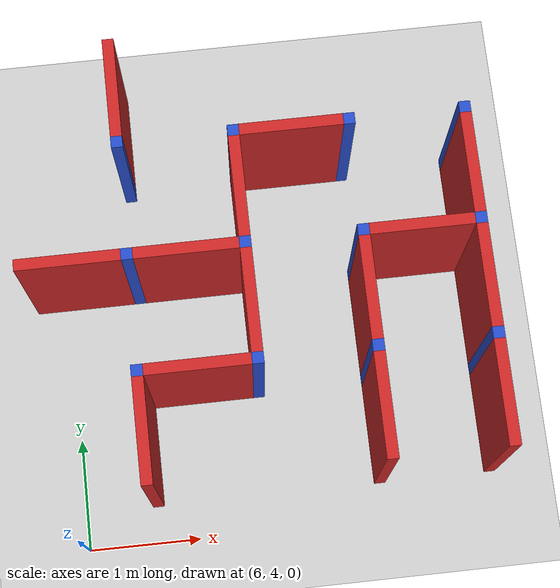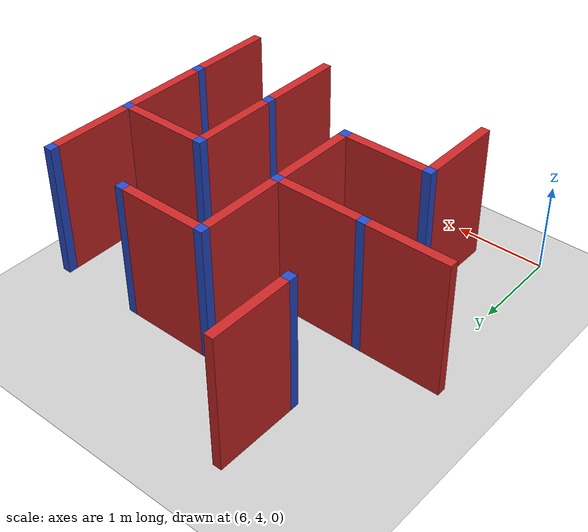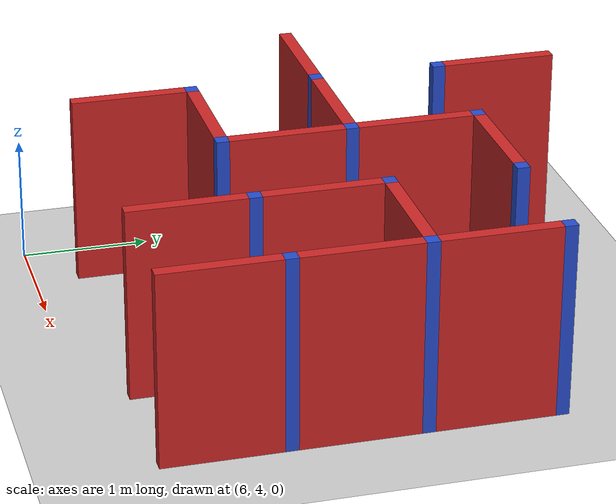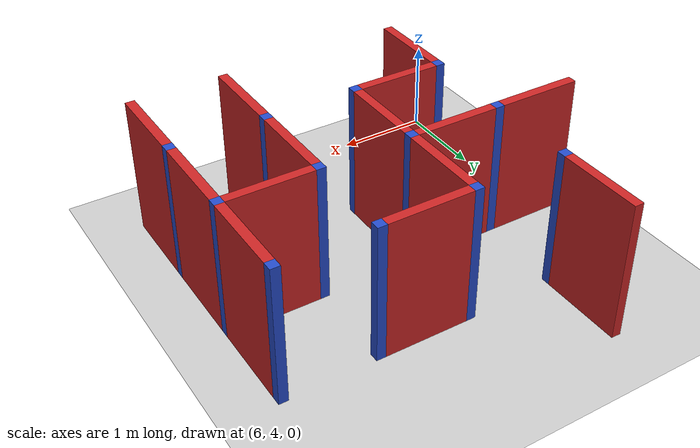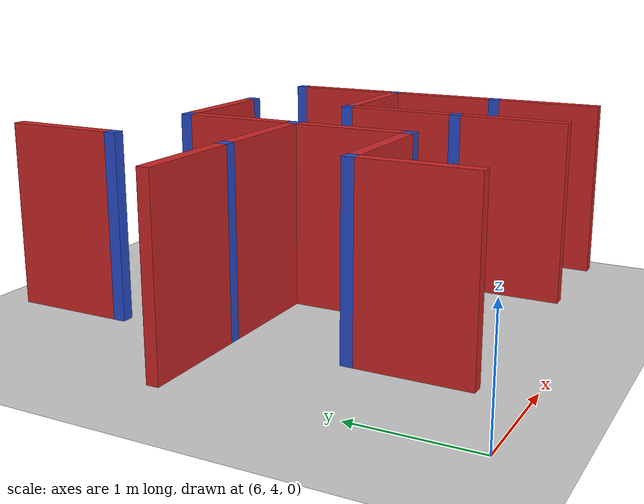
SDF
<sdf version="1.7">
 <world name="default">
  <model name="ground_plane">
   <static>1</static>
   <link name="link">
    <collision name="collision">
     <geometry><plane><normal>0 0 1</normal><size>100 100</size></plane></geometry>
     <surface><friction><ode><mu>100</mu><mu2>50</mu2></ode></friction></surface>
    </collision>
    <visual name="visual">
     <cast_shadows>0</cast_shadows>
     <geometry><plane><normal>0 0 1</normal><size>100 100</size></plane></geometry>
     <material>
      <script><uri>file://media/materials/scripts/gazebo.material</uri><name>Gazebo/Grey</name></script>
     </material>
    </visual>
   </link>
  </model>
  <model name="maze_demo">
   <link name="Joint_12_-10">
    <pose>12 -10 0 0 -0 0</pose>
    <visual name="Wall_2_Visual">
     <pose>0 0 0.75 0 -0 0</pose>
     <geometry><box><size>0.1 0.1 1.5</size></box></geometry>
     <material>
      <script><uri>file://media/materials/scripts/gazebo.material</uri><name>Gazebo/Blue</name></script>
      <ambient>0.996078 0.47451 0.0196078 1</ambient>
      <shader type="pixel"/>
     </material>
     <meta><layer>0</layer></meta>
    </visual>
    <collision name="Wall_2_Collision">
     <pose>0 0 0.75 0 -0 0</pose>
     <geometry><box><size>0.1 0.1 1.5</size></box></geometry>
     <surface>
      <friction>
       <ode><mu>1</mu><mu2>1</mu2><fdir1>0 0 0</fdir1><slip1>0</slip1><slip2>0</slip2></ode>
       <torsional>
        <coefficient>1</coefficient>
        <patch_radius>0</patch_radius>
        <surface_radius>0</surface_radius>
        <use_patch_radius>1</use_patch_radius>
        <ode><slip>0</slip></ode>
       </torsional>
      </friction>
      <bounce><restitution_coefficient>0</restitution_coefficient><threshold>1e+06</threshold></bounce>
      <contact>
       <collide_without_contact>0</collide_without_contact>
       <collide_without_contact_bitmask>1</collide_without_contact_bitmask>
       <collide_bitmask>1</collide_bitmask>
       <ode>
        <soft_cfm>0</soft_cfm>
        <soft_erp>0.2</soft_erp>
        <kp>1e+13</kp>
        <kd>1</kd>
        <max_vel>0.01</max_vel>
        <min_depth>0</min_depth>
       </ode>
       <bullet>
        <split_impulse>1</split_impulse>
        <split_impulse_penetration_threshold>-0.01</split_impulse_penetration_threshold>
        <soft_cfm>0</soft_cfm>
        <soft_erp>0.2</soft_erp>
        <kp>1e+13</kp>
        <kd>1</kd>
       </bullet>
      </contact>
     </surface>
    </collision>
   </link>
   <link name="Joint_12_-8">
    <pose>12 -8 0 0 -0 0</pose>
    <visual name="Wall_2_Visual">
     <pose>0 0 0.75 0 -0 0</pose>
     <geometry><box><size>0.1 0.1 1.5</size></box></geometry>
     <material>
      <script><uri>file://media/materials/scripts/gazebo.material</uri><name>Gazebo/Blue</name></script>
      <ambient>0.996078 0.47451 0.0196078 1</ambient>
      <shader type="pixel"/>
     </material>
     <meta><layer>0</layer></meta>
    </visual>
    <collision name="Wall_2_Collision">
     <pose>0 0 0.75 0 -0 0</pose>
     <geometry><box><size>0.1 0.1 1.5</size></box></geometry>
     <surface>
      <friction>
       <ode><mu>1</mu><mu2>1</mu2><fdir1>0 0 0</fdir1><slip1>0</slip1><slip2>0</slip2></ode>
       <torsional>
        <coefficient>1</coefficient>
        <patch_radius>0</patch_radius>
        <surface_radius>0</surface_radius>
        <use_patch_radius>1</use_patch_radius>
        <ode><slip>0</slip></ode>
       </torsional>
      </friction>
      <bounce><restitution_coefficient>0</restitution_coefficient><threshold>1e+06</threshold></bounce>
      <contact>
       <collide_without_contact>0</collide_without_contact>
       <collide_without_contact_bitmask>1</collide_without_contact_bitmask>
       <collide_bitmask>1</collide_bitmask>
       <ode>
        <soft_cfm>0</soft_cfm>
        <soft_erp>0.2</soft_erp>
        <kp>1e+13</kp>
        <kd>1</kd>
        <max_vel>0.01</max_vel>
        <min_depth>0</min_depth>
       </ode>
       <bullet>
        <split_impulse>1</split_impulse>
        <split_impulse_penetration_threshold>-0.01</split_impulse_penetration_threshold>
        <soft_cfm>0</soft_cfm>
        <soft_erp>0.2</soft_erp>
        <kp>1e+13</kp>
        <kd>1</kd>
       </bullet>
      </contact>
     </surface>
    </collision>
   </link>
   <link name="Joint_12_-9">
    <pose>12 -9 0 0 -0 0</pose>
    <visual name="Wall_2_Visual">
     <pose>0 0 0.75 0 -0 0</pose>
     <geometry><box><size>0.1 0.1 1.5</size></box></geometry>
     <material>
      <script><uri>file://media/materials/scripts/gazebo.material</uri><name>Gazebo/Blue</name></script>
      <ambient>0.996078 0.47451 0.0196078 1</ambient>
      <shader type="pixel"/>
     </material>
     <meta><layer>0</layer></meta>
    </visual>
    <collision name="Wall_2_Collision">
     <pose>0 0 0.75 0 -0 0</pose>
     <geometry><box><size>0.1 0.1 1.5</size></box></geometry>
     <surface>
      <friction>
       <ode><mu>1</mu><mu2>1</mu2><fdir1>0 0 0</fdir1><slip1>0</slip1><slip2>0</slip2></ode>
       <torsional>
        <coefficient>1</coefficient>
        <patch_radius>0</patch_radius>
        <surface_radius>0</surface_radius>
        <use_patch_radius>1</use_patch_radius>
        <ode><slip>0</slip></ode>
       </torsional>
      </friction>
      <bounce><restitution_coefficient>0</restitution_coefficient><threshold>1e+06</threshold></bounce>
      <contact>
       <collide_without_contact>0</collide_without_contact>
       <collide_without_contact_bitmask>1</collide_without_contact_bitmask>
       <collide_bitmask>1</collide_bitmask>
       <ode>
        <soft_cfm>0</soft_cfm>
        <soft_erp>0.2</soft_erp>
        <kp>1e+13</kp>
        <kd>1</kd>
        <max_vel>0.01</max_vel>
        <min_depth>0</min_depth>
       </ode>
       <bullet>
        <split_impulse>1</split_impulse>
        <split_impulse_penetration_threshold>-0.01</split_impulse_penetration_threshold>
        <soft_cfm>0</soft_cfm>
        <soft_erp>0.2</soft_erp>
        <kp>1e+13</kp>
        <kd>1</kd>
       </bullet>
      </contact>
     </surface>
    </collision>
   </link>
   <link name="Joint_13_-10">
    <pose>13 -10 0 0 -0 0</pose>
    <visual name="Wall_2_Visual">
     <pose>0 0 0.75 0 -0 0</pose>
     <geometry><box><size>0.1 0.1 1.5</size></box></geometry>
     <material>
      <script><uri>file://media/materials/scripts/gazebo.material</uri><name>Gazebo/Blue</name></script>
      <ambient>0.996078 0.47451 0.0196078 1</ambient>
      <shader type="pixel"/>
     </material>
     <meta><layer>0</layer></meta>
    </visual>
    <collision name="Wall_2_Collision">
     <pose>0 0 0.75 0 -0 0</pose>
     <geometry><box><size>0.1 0.1 1.5</size></box></geometry>
     <surface>
      <friction>
       <ode><mu>1</mu><mu2>1</mu2><fdir1>0 0 0</fdir1><slip1>0</slip1><slip2>0</slip2></ode>
       <torsional>
        <coefficient>1</coefficient>
        <patch_radius>0</patch_radius>
        <surface_radius>0</surface_radius>
        <use_patch_radius>1</use_patch_radius>
        <ode><slip>0</slip></ode>
       </torsional>
      </friction>
      <bounce><restitution_coefficient>0</restitution_coefficient><threshold>1e+06</threshold></bounce>
      <contact>
       <collide_without_contact>0</collide_without_contact>
       <collide_without_contact_bitmask>1</collide_without_contact_bitmask>
       <collide_bitmask>1</collide_bitmask>
       <ode>
        <soft_cfm>0</soft_cfm>
        <soft_erp>0.2</soft_erp>
        <kp>1e+13</kp>
        <kd>1</kd>
        <max_vel>0.01</max_vel>
        <min_depth>0</min_depth>
       </ode>
       <bullet>
        <split_impulse>1</split_impulse>
        <split_impulse_penetration_threshold>-0.01</split_impulse_penetration_threshold>
        <soft_cfm>0</soft_cfm>
        <soft_erp>0.2</soft_erp>
        <kp>1e+13</kp>
        <kd>1</kd>
       </bullet>
      </contact>
     </surface>
    </collision>
   </link>
   <link name="Joint_13_-8">
    <pose>13 -8 0 0 -0 0</pose>
    <visual name="Wall_2_Visual">
     <pose>0 0 0.75 0 -0 0</pose>
     <geometry><box><size>0.1 0.1 1.5</size></box></geometry>
     <material>
      <script><uri>file://media/materials/scripts/gazebo.material</uri><name>Gazebo/Blue</name></script>
      <ambient>0.996078 0.47451 0.0196078 1</ambient>
      <shader type="pixel"/>
     </material>
     <meta><layer>0</layer></meta>
    </visual>
    <collision name="Wall_2_Collision">
     <pose>0 0 0.75 0 -0 0</pose>
     <geometry><box><size>0.1 0.1 1.5</size></box></geometry>
     <surface>
      <friction>
       <ode><mu>1</mu><mu2>1</mu2><fdir1>0 0 0</fdir1><slip1>0</slip1><slip2>0</slip2></ode>
       <torsional>
        <coefficient>1</coefficient>
        <patch_radius>0</patch_radius>
        <surface_radius>0</surface_radius>
        <use_patch_radius>1</use_patch_radius>
        <ode><slip>0</slip></ode>
       </torsional>
      </friction>
      <bounce><restitution_coefficient>0</restitution_coefficient><threshold>1e+06</threshold></bounce>
      <contact>
       <collide_without_contact>0</collide_without_contact>
       <collide_without_contact_bitmask>1</collide_without_contact_bitmask>
       <collide_bitmask>1</collide_bitmask>
       <ode>
        <soft_cfm>0</soft_cfm>
        <soft_erp>0.2</soft_erp>
        <kp>1e+13</kp>
        <kd>1</kd>
        <max_vel>0.01</max_vel>
        <min_depth>0</min_depth>
       </ode>
       <bullet>
        <split_impulse>1</split_impulse>
        <split_impulse_penetration_threshold>-0.01</split_impulse_penetration_threshold>
        <soft_cfm>0</soft_cfm>
        <soft_erp>0.2</soft_erp>
        <kp>1e+13</kp>
        <kd>1</kd>
       </bullet>
      </contact>
     </surface>
    </collision>
   </link>
   <link name="Joint_13_-9">
    <pose>13 -9 0 0 -0 0</pose>
    <visual name="Wall_2_Visual">
     <pose>0 0 0.75 0 -0 0</pose>
     <geometry><box><size>0.1 0.1 1.5</size></box></geometry>
     <material>
      <script><uri>file://media/materials/scripts/gazebo.material</uri><name>Gazebo/Blue</name></script>
      <ambient>0.996078 0.47451 0.0196078 1</ambient>
      <shader type="pixel"/>
     </material>
     <meta><layer>0</layer></meta>
    </visual>
    <collision name="Wall_2_Collision">
     <pose>0 0 0.75 0 -0 0</pose>
     <geometry><box><size>0.1 0.1 1.5</size></box></geometry>
     <surface>
      <friction>
       <ode><mu>1</mu><mu2>1</mu2><fdir1>0 0 0</fdir1><slip1>0</slip1><slip2>0</slip2></ode>
       <torsional>
        <coefficient>1</coefficient>
        <patch_radius>0</patch_radius>
        <surface_radius>0</surface_radius>
        <use_patch_radius>1</use_patch_radius>
        <ode><slip>0</slip></ode>
       </torsional>
      </friction>
      <bounce><restitution_coefficient>0</restitution_coefficient><threshold>1e+06</threshold></bounce>
      <contact>
       <collide_without_contact>0</collide_without_contact>
       <collide_without_contact_bitmask>1</collide_without_contact_bitmask>
       <collide_bitmask>1</collide_bitmask>
       <ode>
        <soft_cfm>0</soft_cfm>
        <soft_erp>0.2</soft_erp>
        <kp>1e+13</kp>
        <kd>1</kd>
        <max_vel>0.01</max_vel>
        <min_depth>0</min_depth>
       </ode>
       <bullet>
        <split_impulse>1</split_impulse>
        <split_impulse_penetration_threshold>-0.01</split_impulse_penetration_threshold>
        <soft_cfm>0</soft_cfm>
        <soft_erp>0.2</soft_erp>
        <kp>1e+13</kp>
        <kd>1</kd>
       </bullet>
      </contact>
     </surface>
    </collision>
   </link>
   <link name="Joint_14_-10">
    <pose>14 -10 0 0 -0 0</pose>
    <visual name="Wall_2_Visual">
     <pose>0 0 0.75 0 -0 0</pose>
     <geometry><box><size>0.1 0.1 1.5</size></box></geometry>
     <material>
      <script><uri>file://media/materials/scripts/gazebo.material</uri><name>Gazebo/Blue</name></script>
      <ambient>0.996078 0.47451 0.0196078 1</ambient>
      <shader type="pixel"/>
     </material>
     <meta><layer>0</layer></meta>
    </visual>
    <collision name="Wall_2_Collision">
     <pose>0 0 0.75 0 -0 0</pose>
     <geometry><box><size>0.1 0.1 1.5</size></box></geometry>
     <surface>
      <friction>
       <ode><mu>1</mu><mu2>1</mu2><fdir1>0 0 0</fdir1><slip1>0</slip1><slip2>0</slip2></ode>
       <torsional>
        <coefficient>1</coefficient>
        <patch_radius>0</patch_radius>
        <surface_radius>0</surface_radius>
        <use_patch_radius>1</use_patch_radius>
        <ode><slip>0</slip></ode>
       </torsional>
      </friction>
      <bounce><restitution_coefficient>0</restitution_coefficient><threshold>1e+06</threshold></bounce>
      <contact>
       <collide_without_contact>0</collide_without_contact>
       <collide_without_contact_bitmask>1</collide_without_contact_bitmask>
       <collide_bitmask>1</collide_bitmask>
       <ode>
        <soft_cfm>0</soft_cfm>
        <soft_erp>0.2</soft_erp>
        <kp>1e+13</kp>
        <kd>1</kd>
        <max_vel>0.01</max_vel>
        <min_depth>0</min_depth>
       </ode>
       <bullet>
        <split_impulse>1</split_impulse>
        <split_impulse_penetration_threshold>-0.01</split_impulse_penetration_threshold>
        <soft_cfm>0</soft_cfm>
        <soft_erp>0.2</soft_erp>
        <kp>1e+13</kp>
        <kd>1</kd>
       </bullet>
      </contact>
     </surface>
    </collision>
   </link>
   <link name="Joint_14_-8">
    <pose>14 -8 0 0 -0 0</pose>
    <visual name="Wall_2_Visual">
     <pose>0 0 0.75 0 -0 0</pose>
     <geometry><box><size>0.1 0.1 1.5</size></box></geometry>
     <material>
      <script><uri>file://media/materials/scripts/gazebo.material</uri><name>Gazebo/Blue</name></script>
      <ambient>0.996078 0.47451 0.0196078 1</ambient>
      <shader type="pixel"/>
     </material>
     <meta><layer>0</layer></meta>
    </visual>
    <collision name="Wall_2_Collision">
     <pose>0 0 0.75 0 -0 0</pose>
     <geometry><box><size>0.1 0.1 1.5</size></box></geometry>
     <surface>
      <friction>
       <ode><mu>1</mu><mu2>1</mu2><fdir1>0 0 0</fdir1><slip1>0</slip1><slip2>0</slip2></ode>
       <torsional>
        <coefficient>1</coefficient>
        <patch_radius>0</patch_radius>
        <surface_radius>0</surface_radius>
        <use_patch_radius>1</use_patch_radius>
        <ode><slip>0</slip></ode>
       </torsional>
      </friction>
      <bounce><restitution_coefficient>0</restitution_coefficient><threshold>1e+06</threshold></bounce>
      <contact>
       <collide_without_contact>0</collide_without_contact>
       <collide_without_contact_bitmask>1</collide_without_contact_bitmask>
       <collide_bitmask>1</collide_bitmask>
       <ode>
        <soft_cfm>0</soft_cfm>
        <soft_erp>0.2</soft_erp>
        <kp>1e+13</kp>
        <kd>1</kd>
        <max_vel>0.01</max_vel>
        <min_depth>0</min_depth>
       </ode>
       <bullet>
        <split_impulse>1</split_impulse>
        <split_impulse_penetration_threshold>-0.01</split_impulse_penetration_threshold>
        <soft_cfm>0</soft_cfm>
        <soft_erp>0.2</soft_erp>
        <kp>1e+13</kp>
        <kd>1</kd>
       </bullet>
      </contact>
     </surface>
    </collision>
   </link>
   <link name="Joint_14_-9">
    <pose>14 -9 0 0 -0 0</pose>
    <visual name="Wall_2_Visual">
     <pose>0 0 0.75 0 -0 0</pose>
     <geometry><box><size>0.1 0.1 1.5</size></box></geometry>
     <material>
      <script><uri>file://media/materials/scripts/gazebo.material</uri><name>Gazebo/Blue</name></script>
      <ambient>0.996078 0.47451 0.0196078 1</ambient>
      <shader type="pixel"/>
     </material>
     <meta><layer>0</layer></meta>
    </visual>
    <collision name="Wall_2_Collision">
     <pose>0 0 0.75 0 -0 0</pose>
     <geometry><box><size>0.1 0.1 1.5</size></box></geometry>
     <surface>
      <friction>
       <ode><mu>1</mu><mu2>1</mu2><fdir1>0 0 0</fdir1><slip1>0</slip1><slip2>0</slip2></ode>
       <torsional>
        <coefficient>1</coefficient>
        <patch_radius>0</patch_radius>
        <surface_radius>0</surface_radius>
        <use_patch_radius>1</use_patch_radius>
        <ode><slip>0</slip></ode>
       </torsional>
      </friction>
      <bounce><restitution_coefficient>0</restitution_coefficient><threshold>1e+06</threshold></bounce>
      <contact>
       <collide_without_contact>0</collide_without_contact>
       <collide_without_contact_bitmask>1</collide_without_contact_bitmask>
       <collide_bitmask>1</collide_bitmask>
       <ode>
        <soft_cfm>0</soft_cfm>
        <soft_erp>0.2</soft_erp>
        <kp>1e+13</kp>
        <kd>1</kd>
        <max_vel>0.01</max_vel>
        <min_depth>0</min_depth>
       </ode>
       <bullet>
        <split_impulse>1</split_impulse>
        <split_impulse_penetration_threshold>-0.01</split_impulse_penetration_threshold>
        <soft_cfm>0</soft_cfm>
        <soft_erp>0.2</soft_erp>
        <kp>1e+13</kp>
        <kd>1</kd>
       </bullet>
      </contact>
     </surface>
    </collision>
   </link>
   <link name="Joint_15_-10">
    <pose>15 -10 0 0 -0 0</pose>
    <visual name="Wall_2_Visual">
     <pose>0 0 0.75 0 -0 0</pose>
     <geometry><box><size>0.1 0.1 1.5</size></box></geometry>
     <material>
      <script><uri>file://media/materials/scripts/gazebo.material</uri><name>Gazebo/Blue</name></script>
      <ambient>0.996078 0.47451 0.0196078 1</ambient>
      <shader type="pixel"/>
     </material>
     <meta><layer>0</layer></meta>
    </visual>
    <collision name="Wall_2_Collision">
     <pose>0 0 0.75 0 -0 0</pose>
     <geometry><box><size>0.1 0.1 1.5</size></box></geometry>
     <surface>
      <friction>
       <ode><mu>1</mu><mu2>1</mu2><fdir1>0 0 0</fdir1><slip1>0</slip1><slip2>0</slip2></ode>
       <torsional>
        <coefficient>1</coefficient>
        <patch_radius>0</patch_radius>
        <surface_radius>0</surface_radius>
        <use_patch_radius>1</use_patch_radius>
        <ode><slip>0</slip></ode>
       </torsional>
      </friction>
      <bounce><restitution_coefficient>0</restitution_coefficient><threshold>1e+06</threshold></bounce>
      <contact>
       <collide_without_contact>0</collide_without_contact>
       <collide_without_contact_bitmask>1</collide_without_contact_bitmask>
       <collide_bitmask>1</collide_bitmask>
       <ode>
        <soft_cfm>0</soft_cfm>
        <soft_erp>0.2</soft_erp>
        <kp>1e+13</kp>
        <kd>1</kd>
        <max_vel>0.01</max_vel>
        <min_depth>0</min_depth>
       </ode>
       <bullet>
        <split_impulse>1</split_impulse>
        <split_impulse_penetration_threshold>-0.01</split_impulse_penetration_threshold>
        <soft_cfm>0</soft_cfm>
        <soft_erp>0.2</soft_erp>
        <kp>1e+13</kp>
        <kd>1</kd>
       </bullet>
      </contact>
     </surface>
    </collision>
   </link>
   <link name="Joint_15_-8">
    <pose>15 -8 0 0 -0 0</pose>
    <visual name="Wall_2_Visual">
     <pose>0 0 0.75 0 -0 0</pose>
     <geometry><box><size>0.1 0.1 1.5</size></box></geometry>
     <material>
      <script><uri>file://media/materials/scripts/gazebo.material</uri><name>Gazebo/Blue</name></script>
      <ambient>0.996078 0.47451 0.0196078 1</ambient>
      <shader type="pixel"/>
     </material>
     <meta><layer>0</layer></meta>
    </visual>
    <collision name="Wall_2_Collision">
     <pose>0 0 0.75 0 -0 0</pose>
     <geometry><box><size>0.1 0.1 1.5</size></box></geometry>
     <surface>
      <friction>
       <ode><mu>1</mu><mu2>1</mu2><fdir1>0 0 0</fdir1><slip1>0</slip1><slip2>0</slip2></ode>
       <torsional>
        <coefficient>1</coefficient>
        <patch_radius>0</patch_radius>
        <surface_radius>0</surface_radius>
        <use_patch_radius>1</use_patch_radius>
        <ode><slip>0</slip></ode>
       </torsional>
      </friction>
      <bounce><restitution_coefficient>0</restitution_coefficient><threshold>1e+06</threshold></bounce>
      <contact>
       <collide_without_contact>0</collide_without_contact>
       <collide_without_contact_bitmask>1</collide_without_contact_bitmask>
       <collide_bitmask>1</collide_bitmask>
       <ode>
        <soft_cfm>0</soft_cfm>
        <soft_erp>0.2</soft_erp>
        <kp>1e+13</kp>
        <kd>1</kd>
        <max_vel>0.01</max_vel>
        <min_depth>0</min_depth>
       </ode>
       <bullet>
        <split_impulse>1</split_impulse>
        <split_impulse_penetration_threshold>-0.01</split_impulse_penetration_threshold>
        <soft_cfm>0</soft_cfm>
        <soft_erp>0.2</soft_erp>
        <kp>1e+13</kp>
        <kd>1</kd>
       </bullet>
      </contact>
     </surface>
    </collision>
   </link>
   <link name="Joint_15_-9">
    <pose>15 -9 0 0 -0 0</pose>
    <visual name="Wall_2_Visual">
     <pose>0 0 0.75 0 -0 0</pose>
     <geometry><box><size>0.1 0.1 1.5</size></box></geometry>
     <material>
      <script><uri>file://media/materials/scripts/gazebo.material</uri><name>Gazebo/Blue</name></script>
      <ambient>0.996078 0.47451 0.0196078 1</ambient>
      <shader type="pixel"/>
     </material>
     <meta><layer>0</layer></meta>
    </visual>
    <collision name="Wall_2_Collision">
     <pose>0 0 0.75 0 -0 0</pose>
     <geometry><box><size>0.1 0.1 1.5</size></box></geometry>
     <surface>
      <friction>
       <ode><mu>1</mu><mu2>1</mu2><fdir1>0 0 0</fdir1><slip1>0</slip1><slip2>0</slip2></ode>
       <torsional>
        <coefficient>1</coefficient>
        <patch_radius>0</patch_radius>
        <surface_radius>0</surface_radius>
        <use_patch_radius>1</use_patch_radius>
        <ode><slip>0</slip></ode>
       </torsional>
      </friction>
      <bounce><restitution_coefficient>0</restitution_coefficient><threshold>1e+06</threshold></bounce>
      <contact>
       <collide_without_contact>0</collide_without_contact>
       <collide_without_contact_bitmask>1</collide_without_contact_bitmask>
       <collide_bitmask>1</collide_bitmask>
       <ode>
        <soft_cfm>0</soft_cfm>
        <soft_erp>0.2</soft_erp>
        <kp>1e+13</kp>
        <kd>1</kd>
        <max_vel>0.01</max_vel>
        <min_depth>0</min_depth>
       </ode>
       <bullet>
        <split_impulse>1</split_impulse>
        <split_impulse_penetration_threshold>-0.01</split_impulse_penetration_threshold>
        <soft_cfm>0</soft_cfm>
        <soft_erp>0.2</soft_erp>
        <kp>1e+13</kp>
        <kd>1</kd>
       </bullet>
      </contact>
     </surface>
    </collision>
   </link>
   <link name="Wall_11_9_h">
    <pose>11.5 -9 0 0 -0 0</pose>
    <visual name="Wall_0_Visual">
     <pose>0 0 0.75 0 -0 0</pose>
     <geometry><box><size>0.9 0.1 1.5</size></box></geometry>
     <material>
      <script><uri>file://media/materials/scripts/gazebo.material</uri><name>Gazebo/Red</name></script>
      <ambient>0.921569 0.807843 0.615686 1</ambient>
      <shader type="pixel"/>
     </material>
     <meta><layer>0</layer></meta>
    </visual>
    <collision name="Wall_0_Collision">
     <pose>0 0 0.75 0 -0 0</pose>
     <geometry><box><size>0.9 0.1 1.5</size></box></geometry>
     <surface>
      <friction>
       <ode><mu>1</mu><mu2>1</mu2><fdir1>0 0 0</fdir1><slip1>0</slip1><slip2>0</slip2></ode>
       <torsional>
        <coefficient>1</coefficient>
        <patch_radius>0</patch_radius>
        <surface_radius>0</surface_radius>
        <use_patch_radius>1</use_patch_radius>
        <ode><slip>0</slip></ode>
       </torsional>
      </friction>
      <bounce><restitution_coefficient>0</restitution_coefficient><threshold>1e+06</threshold></bounce>
      <contact>
       <collide_without_contact>0</collide_without_contact>
       <collide_without_contact_bitmask>1</collide_without_contact_bitmask>
       <collide_bitmask>1</collide_bitmask>
       <ode>
        <soft_cfm>0</soft_cfm>
        <soft_erp>0.2</soft_erp>
        <kp>1e+13</kp>
        <kd>1</kd>
        <max_vel>0.01</max_vel>
        <min_depth>0</min_depth>
       </ode>
       <bullet>
        <split_impulse>1</split_impulse>
        <split_impulse_penetration_threshold>-0.01</split_impulse_penetration_threshold>
        <soft_cfm>0</soft_cfm>
        <soft_erp>0.2</soft_erp>
        <kp>1e+13</kp>
        <kd>1</kd>
       </bullet>
      </contact>
     </surface>
    </collision>
   </link>
   <link name="Wall_12_10_h">
    <pose>12.5 -10 0 0 -0 0</pose>
    <visual name="Wall_0_Visual">
     <pose>0 0 0.75 0 -0 0</pose>
     <geometry><box><size>0.9 0.1 1.5</size></box></geometry>
     <material>
      <script><uri>file://media/materials/scripts/gazebo.material</uri><name>Gazebo/Red</name></script>
      <ambient>0.921569 0.807843 0.615686 1</ambient>
      <shader type="pixel"/>
     </material>
     <meta><layer>0</layer></meta>
    </visual>
    <collision name="Wall_0_Collision">
     <pose>0 0 0.75 0 -0 0</pose>
     <geometry><box><size>0.9 0.1 1.5</size></box></geometry>
     <surface>
      <friction>
       <ode><mu>1</mu><mu2>1</mu2><fdir1>0 0 0</fdir1><slip1>0</slip1><slip2>0</slip2></ode>
       <torsional>
        <coefficient>1</coefficient>
        <patch_radius>0</patch_radius>
        <surface_radius>0</surface_radius>
        <use_patch_radius>1</use_patch_radius>
        <ode><slip>0</slip></ode>
       </torsional>
      </friction>
      <bounce><restitution_coefficient>0</restitution_coefficient><threshold>1e+06</threshold></bounce>
      <contact>
       <collide_without_contact>0</collide_without_contact>
       <collide_without_contact_bitmask>1</collide_without_contact_bitmask>
       <collide_bitmask>1</collide_bitmask>
       <ode>
        <soft_cfm>0</soft_cfm>
        <soft_erp>0.2</soft_erp>
        <kp>1e+13</kp>
        <kd>1</kd>
        <max_vel>0.01</max_vel>
        <min_depth>0</min_depth>
       </ode>
       <bullet>
        <split_impulse>1</split_impulse>
        <split_impulse_penetration_threshold>-0.01</split_impulse_penetration_threshold>
        <soft_cfm>0</soft_cfm>
        <soft_erp>0.2</soft_erp>
        <kp>1e+13</kp>
        <kd>1</kd>
       </bullet>
      </contact>
     </surface>
    </collision>
   </link>
   <link name="Wall_12_10_v">
    <pose>12 -10.5 0 0 -0 1.5708</pose>
    <visual name="Wall_0_Visual">
     <pose>0 0 0.75 0 -0 0</pose>
     <geometry><box><size>0.9 0.1 1.5</size></box></geometry>
     <material>
      <script><uri>file://media/materials/scripts/gazebo.material</uri><name>Gazebo/Red</name></script>
      <ambient>0.921569 0.807843 0.615686 1</ambient>
      <shader type="pixel"/>
     </material>
     <meta><layer>0</layer></meta>
    </visual>
    <collision name="Wall_0_Collision">
     <pose>0 0 0.75 0 -0 0</pose>
     <geometry><box><size>0.9 0.1 1.5</size></box></geometry>
     <surface>
      <friction>
       <ode><mu>1</mu><mu2>1</mu2><fdir1>0 0 0</fdir1><slip1>0</slip1><slip2>0</slip2></ode>
       <torsional>
        <coefficient>1</coefficient>
        <patch_radius>0</patch_radius>
        <surface_radius>0</surface_radius>
        <use_patch_radius>1</use_patch_radius>
        <ode><slip>0</slip></ode>
       </torsional>
      </friction>
      <bounce><restitution_coefficient>0</restitution_coefficient><threshold>1e+06</threshold></bounce>
      <contact>
       <collide_without_contact>0</collide_without_contact>
       <collide_without_contact_bitmask>1</collide_without_contact_bitmask>
       <collide_bitmask>1</collide_bitmask>
       <ode>
        <soft_cfm>0</soft_cfm>
        <soft_erp>0.2</soft_erp>
        <kp>1e+13</kp>
        <kd>1</kd>
        <max_vel>0.01</max_vel>
        <min_depth>0</min_depth>
       </ode>
       <bullet>
        <split_impulse>1</split_impulse>
        <split_impulse_penetration_threshold>-0.01</split_impulse_penetration_threshold>
        <soft_cfm>0</soft_cfm>
        <soft_erp>0.2</soft_erp>
        <kp>1e+13</kp>
        <kd>1</kd>
       </bullet>
      </contact>
     </surface>
    </collision>
   </link>
   <link name="Wall_12_7_v">
    <pose>12 -7.5 0 0 -0 1.5708</pose>
    <visual name="Wall_0_Visual">
     <pose>0 0 0.75 0 -0 0</pose>
     <geometry><box><size>0.9 0.1 1.5</size></box></geometry>
     <material>
      <script><uri>file://media/materials/scripts/gazebo.material</uri><name>Gazebo/Red</name></script>
      <ambient>0.921569 0.807843 0.615686 1</ambient>
      <shader type="pixel"/>
     </material>
     <meta><layer>0</layer></meta>
    </visual>
    <collision name="Wall_0_Collision">
     <pose>0 0 0.75 0 -0 0</pose>
     <geometry><box><size>0.9 0.1 1.5</size></box></geometry>
     <surface>
      <friction>
       <ode><mu>1</mu><mu2>1</mu2><fdir1>0 0 0</fdir1><slip1>0</slip1><slip2>0</slip2></ode>
       <torsional>
        <coefficient>1</coefficient>
        <patch_radius>0</patch_radius>
        <surface_radius>0</surface_radius>
        <use_patch_radius>1</use_patch_radius>
        <ode><slip>0</slip></ode>
       </torsional>
      </friction>
      <bounce><restitution_coefficient>0</restitution_coefficient><threshold>1e+06</threshold></bounce>
      <contact>
       <collide_without_contact>0</collide_without_contact>
       <collide_without_contact_bitmask>1</collide_without_contact_bitmask>
       <collide_bitmask>1</collide_bitmask>
       <ode>
        <soft_cfm>0</soft_cfm>
        <soft_erp>0.2</soft_erp>
        <kp>1e+13</kp>
        <kd>1</kd>
        <max_vel>0.01</max_vel>
        <min_depth>0</min_depth>
       </ode>
       <bullet>
        <split_impulse>1</split_impulse>
        <split_impulse_penetration_threshold>-0.01</split_impulse_penetration_threshold>
        <soft_cfm>0</soft_cfm>
        <soft_erp>0.2</soft_erp>
        <kp>1e+13</kp>
        <kd>1</kd>
       </bullet>
      </contact>
     </surface>
    </collision>
   </link>
   <link name="Wall_12_9_h">
    <pose>12.5 -9 0 0 -0 0</pose>
    <visual name="Wall_0_Visual">
     <pose>0 0 0.75 0 -0 0</pose>
     <geometry><box><size>0.9 0.1 1.5</size></box></geometry>
     <material>
      <script><uri>file://media/materials/scripts/gazebo.material</uri><name>Gazebo/Red</name></script>
      <ambient>0.921569 0.807843 0.615686 1</ambient>
      <shader type="pixel"/>
     </material>
     <meta><layer>0</layer></meta>
    </visual>
    <collision name="Wall_0_Collision">
     <pose>0 0 0.75 0 -0 0</pose>
     <geometry><box><size>0.9 0.1 1.5</size></box></geometry>
     <surface>
      <friction>
       <ode><mu>1</mu><mu2>1</mu2><fdir1>0 0 0</fdir1><slip1>0</slip1><slip2>0</slip2></ode>
       <torsional>
        <coefficient>1</coefficient>
        <patch_radius>0</patch_radius>
        <surface_radius>0</surface_radius>
        <use_patch_radius>1</use_patch_radius>
        <ode><slip>0</slip></ode>
       </torsional>
      </friction>
      <bounce><restitution_coefficient>0</restitution_coefficient><threshold>1e+06</threshold></bounce>
      <contact>
       <collide_without_contact>0</collide_without_contact>
       <collide_without_contact_bitmask>1</collide_without_contact_bitmask>
       <collide_bitmask>1</collide_bitmask>
       <ode>
        <soft_cfm>0</soft_cfm>
        <soft_erp>0.2</soft_erp>
        <kp>1e+13</kp>
        <kd>1</kd>
        <max_vel>0.01</max_vel>
        <min_depth>0</min_depth>
       </ode>
       <bullet>
        <split_impulse>1</split_impulse>
        <split_impulse_penetration_threshold>-0.01</split_impulse_penetration_threshold>
        <soft_cfm>0</soft_cfm>
        <soft_erp>0.2</soft_erp>
        <kp>1e+13</kp>
        <kd>1</kd>
       </bullet>
      </contact>
     </surface>
    </collision>
   </link>
   <link name="Wall_13_8_h">
    <pose>13.5 -8 0 0 -0 0</pose>
    <visual name="Wall_0_Visual">
     <pose>0 0 0.75 0 -0 0</pose>
     <geometry><box><size>0.9 0.1 1.5</size></box></geometry>
     <material>
      <script><uri>file://media/materials/scripts/gazebo.material</uri><name>Gazebo/Red</name></script>
      <ambient>0.921569 0.807843 0.615686 1</ambient>
      <shader type="pixel"/>
     </material>
     <meta><layer>0</layer></meta>
    </visual>
    <collision name="Wall_0_Collision">
     <pose>0 0 0.75 0 -0 0</pose>
     <geometry><box><size>0.9 0.1 1.5</size></box></geometry>
     <surface>
      <friction>
       <ode><mu>1</mu><mu2>1</mu2><fdir1>0 0 0</fdir1><slip1>0</slip1><slip2>0</slip2></ode>
       <torsional>
        <coefficient>1</coefficient>
        <patch_radius>0</patch_radius>
        <surface_radius>0</surface_radius>
        <use_patch_radius>1</use_patch_radius>
        <ode><slip>0</slip></ode>
       </torsional>
      </friction>
      <bounce><restitution_coefficient>0</restitution_coefficient><threshold>1e+06</threshold></bounce>
      <contact>
       <collide_without_contact>0</collide_without_contact>
       <collide_without_contact_bitmask>1</collide_without_contact_bitmask>
       <collide_bitmask>1</collide_bitmask>
       <ode>
        <soft_cfm>0</soft_cfm>
        <soft_erp>0.2</soft_erp>
        <kp>1e+13</kp>
        <kd>1</kd>
        <max_vel>0.01</max_vel>
        <min_depth>0</min_depth>
       </ode>
       <bullet>
        <split_impulse>1</split_impulse>
        <split_impulse_penetration_threshold>-0.01</split_impulse_penetration_threshold>
        <soft_cfm>0</soft_cfm>
        <soft_erp>0.2</soft_erp>
        <kp>1e+13</kp>
        <kd>1</kd>
       </bullet>
      </contact>
     </surface>
    </collision>
   </link>
   <link name="Wall_13_8_v">
    <pose>13 -8.5 0 0 -0 1.5708</pose>
    <visual name="Wall_0_Visual">
     <pose>0 0 0.75 0 -0 0</pose>
     <geometry><box><size>0.9 0.1 1.5</size></box></geometry>
     <material>
      <script><uri>file://media/materials/scripts/gazebo.material</uri><name>Gazebo/Red</name></script>
      <ambient>0.921569 0.807843 0.615686 1</ambient>
      <shader type="pixel"/>
     </material>
     <meta><layer>0</layer></meta>
    </visual>
    <collision name="Wall_0_Collision">
     <pose>0 0 0.75 0 -0 0</pose>
     <geometry><box><size>0.9 0.1 1.5</size></box></geometry>
     <surface>
      <friction>
       <ode><mu>1</mu><mu2>1</mu2><fdir1>0 0 0</fdir1><slip1>0</slip1><slip2>0</slip2></ode>
       <torsional>
        <coefficient>1</coefficient>
        <patch_radius>0</patch_radius>
        <surface_radius>0</surface_radius>
        <use_patch_radius>1</use_patch_radius>
        <ode><slip>0</slip></ode>
       </torsional>
      </friction>
      <bounce><restitution_coefficient>0</restitution_coefficient><threshold>1e+06</threshold></bounce>
      <contact>
       <collide_without_contact>0</collide_without_contact>
       <collide_without_contact_bitmask>1</collide_without_contact_bitmask>
       <collide_bitmask>1</collide_bitmask>
       <ode>
        <soft_cfm>0</soft_cfm>
        <soft_erp>0.2</soft_erp>
        <kp>1e+13</kp>
        <kd>1</kd>
        <max_vel>0.01</max_vel>
        <min_depth>0</min_depth>
       </ode>
       <bullet>
        <split_impulse>1</split_impulse>
        <split_impulse_penetration_threshold>-0.01</split_impulse_penetration_threshold>
        <soft_cfm>0</soft_cfm>
        <soft_erp>0.2</soft_erp>
        <kp>1e+13</kp>
        <kd>1</kd>
       </bullet>
      </contact>
     </surface>
    </collision>
   </link>
   <link name="Wall_13_9_v">
    <pose>13 -9.5 0 0 -0 1.5708</pose>
    <visual name="Wall_0_Visual">
     <pose>0 0 0.75 0 -0 0</pose>
     <geometry><box><size>0.9 0.1 1.5</size></box></geometry>
     <material>
      <script><uri>file://media/materials/scripts/gazebo.material</uri><name>Gazebo/Red</name></script>
      <ambient>0.921569 0.807843 0.615686 1</ambient>
      <shader type="pixel"/>
     </material>
     <meta><layer>0</layer></meta>
    </visual>
    <collision name="Wall_0_Collision">
     <pose>0 0 0.75 0 -0 0</pose>
     <geometry><box><size>0.9 0.1 1.5</size></box></geometry>
     <surface>
      <friction>
       <ode><mu>1</mu><mu2>1</mu2><fdir1>0 0 0</fdir1><slip1>0</slip1><slip2>0</slip2></ode>
       <torsional>
        <coefficient>1</coefficient>
        <patch_radius>0</patch_radius>
        <surface_radius>0</surface_radius>
        <use_patch_radius>1</use_patch_radius>
        <ode><slip>0</slip></ode>
       </torsional>
      </friction>
      <bounce><restitution_coefficient>0</restitution_coefficient><threshold>1e+06</threshold></bounce>
      <contact>
       <collide_without_contact>0</collide_without_contact>
       <collide_without_contact_bitmask>1</collide_without_contact_bitmask>
       <collide_bitmask>1</collide_bitmask>
       <ode>
        <soft_cfm>0</soft_cfm>
        <soft_erp>0.2</soft_erp>
        <kp>1e+13</kp>
        <kd>1</kd>
        <max_vel>0.01</max_vel>
        <min_depth>0</min_depth>
       </ode>
       <bullet>
        <split_impulse>1</split_impulse>
        <split_impulse_penetration_threshold>-0.01</split_impulse_penetration_threshold>
        <soft_cfm>0</soft_cfm>
        <soft_erp>0.2</soft_erp>
        <kp>1e+13</kp>
        <kd>1</kd>
       </bullet>
      </contact>
     </surface>
    </collision>
   </link>
   <link name="Wall_14_10_v">
    <pose>14 -10.5 0 0 -0 1.5708</pose>
    <visual name="Wall_0_Visual">
     <pose>0 0 0.75 0 -0 0</pose>
     <geometry><box><size>0.9 0.1 1.5</size></box></geometry>
     <material>
      <script><uri>file://media/materials/scripts/gazebo.material</uri><name>Gazebo/Red</name></script>
      <ambient>0.921569 0.807843 0.615686 1</ambient>
      <shader type="pixel"/>
     </material>
     <meta><layer>0</layer></meta>
    </visual>
    <collision name="Wall_0_Collision">
     <pose>0 0 0.75 0 -0 0</pose>
     <geometry><box><size>0.9 0.1 1.5</size></box></geometry>
     <surface>
      <friction>
       <ode><mu>1</mu><mu2>1</mu2><fdir1>0 0 0</fdir1><slip1>0</slip1><slip2>0</slip2></ode>
       <torsional>
        <coefficient>1</coefficient>
        <patch_radius>0</patch_radius>
        <surface_radius>0</surface_radius>
        <use_patch_radius>1</use_patch_radius>
        <ode><slip>0</slip></ode>
       </torsional>
      </friction>
      <bounce><restitution_coefficient>0</restitution_coefficient><threshold>1e+06</threshold></bounce>
      <contact>
       <collide_without_contact>0</collide_without_contact>
       <collide_without_contact_bitmask>1</collide_without_contact_bitmask>
       <collide_bitmask>1</collide_bitmask>
       <ode>
        <soft_cfm>0</soft_cfm>
        <soft_erp>0.2</soft_erp>
        <kp>1e+13</kp>
        <kd>1</kd>
        <max_vel>0.01</max_vel>
        <min_depth>0</min_depth>
       </ode>
       <bullet>
        <split_impulse>1</split_impulse>
        <split_impulse_penetration_threshold>-0.01</split_impulse_penetration_threshold>
        <soft_cfm>0</soft_cfm>
        <soft_erp>0.2</soft_erp>
        <kp>1e+13</kp>
        <kd>1</kd>
       </bullet>
      </contact>
     </surface>
    </collision>
   </link>
   <link name="Wall_14_9_h">
    <pose>14.5 -9 0 0 -0 0</pose>
    <visual name="Wall_0_Visual">
     <pose>0 0 0.75 0 -0 0</pose>
     <geometry><box><size>0.9 0.1 1.5</size></box></geometry>
     <material>
      <script><uri>file://media/materials/scripts/gazebo.material</uri><name>Gazebo/Red</name></script>
      <ambient>0.921569 0.807843 0.615686 1</ambient>
      <shader type="pixel"/>
     </material>
     <meta><layer>0</layer></meta>
    </visual>
    <collision name="Wall_0_Collision">
     <pose>0 0 0.75 0 -0 0</pose>
     <geometry><box><size>0.9 0.1 1.5</size></box></geometry>
     <surface>
      <friction>
       <ode><mu>1</mu><mu2>1</mu2><fdir1>0 0 0</fdir1><slip1>0</slip1><slip2>0</slip2></ode>
       <torsional>
        <coefficient>1</coefficient>
        <patch_radius>0</patch_radius>
        <surface_radius>0</surface_radius>
        <use_patch_radius>1</use_patch_radius>
        <ode><slip>0</slip></ode>
       </torsional>
      </friction>
      <bounce><restitution_coefficient>0</restitution_coefficient><threshold>1e+06</threshold></bounce>
      <contact>
       <collide_without_contact>0</collide_without_contact>
       <collide_without_contact_bitmask>1</collide_without_contact_bitmask>
       <collide_bitmask>1</collide_bitmask>
       <ode>
        <soft_cfm>0</soft_cfm>
        <soft_erp>0.2</soft_erp>
        <kp>1e+13</kp>
        <kd>1</kd>
        <max_vel>0.01</max_vel>
        <min_depth>0</min_depth>
       </ode>
       <bullet>
        <split_impulse>1</split_impulse>
        <split_impulse_penetration_threshold>-0.01</split_impulse_penetration_threshold>
        <soft_cfm>0</soft_cfm>
        <soft_erp>0.2</soft_erp>
        <kp>1e+13</kp>
        <kd>1</kd>
       </bullet>
      </contact>
     </surface>
    </collision>
   </link>
   <link name="Wall_14_9_v">
    <pose>14 -9.5 0 0 -0 1.5708</pose>
    <visual name="Wall_0_Visual">
     <pose>0 0 0.75 0 -0 0</pose>
     <geometry><box><size>0.9 0.1 1.5</size></box></geometry>
     <material>
      <script><uri>file://media/materials/scripts/gazebo.material</uri><name>Gazebo/Red</name></script>
      <ambient>0.921569 0.807843 0.615686 1</ambient>
      <shader type="pixel"/>
     </material>
     <meta><layer>0</layer></meta>
    </visual>
    <collision name="Wall_0_Collision">
     <pose>0 0 0.75 0 -0 0</pose>
     <geometry><box><size>0.9 0.1 1.5</size></box></geometry>
     <surface>
      <friction>
       <ode><mu>1</mu><mu2>1</mu2><fdir1>0 0 0</fdir1><slip1>0</slip1><slip2>0</slip2></ode>
       <torsional>
        <coefficient>1</coefficient>
        <patch_radius>0</patch_radius>
        <surface_radius>0</surface_radius>
        <use_patch_radius>1</use_patch_radius>
        <ode><slip>0</slip></ode>
       </torsional>
      </friction>
      <bounce><restitution_coefficient>0</restitution_coefficient><threshold>1e+06</threshold></bounce>
      <contact>
       <collide_without_contact>0</collide_without_contact>
       <collide_without_contact_bitmask>1</collide_without_contact_bitmask>
       <collide_bitmask>1</collide_bitmask>
       <ode>
        <soft_cfm>0</soft_cfm>
        <soft_erp>0.2</soft_erp>
        <kp>1e+13</kp>
        <kd>1</kd>
        <max_vel>0.01</max_vel>
        <min_depth>0</min_depth>
       </ode>
       <bullet>
        <split_impulse>1</split_impulse>
        <split_impulse_penetration_threshold>-0.01</split_impulse_penetration_threshold>
        <soft_cfm>0</soft_cfm>
        <soft_erp>0.2</soft_erp>
        <kp>1e+13</kp>
        <kd>1</kd>
       </bullet>
      </contact>
     </surface>
    </collision>
   </link>
   <link name="Wall_15_10_v">
    <pose>15 -10.5 0 0 -0 1.5708</pose>
    <visual name="Wall_0_Visual">
     <pose>0 0 0.75 0 -0 0</pose>
     <geometry><box><size>0.9 0.1 1.5</size></box></geometry>
     <material>
      <script><uri>file://media/materials/scripts/gazebo.material</uri><name>Gazebo/Red</name></script>
      <ambient>0.921569 0.807843 0.615686 1</ambient>
      <shader type="pixel"/>
     </material>
     <meta><layer>0</layer></meta>
    </visual>
    <collision name="Wall_0_Collision">
     <pose>0 0 0.75 0 -0 0</pose>
     <geometry><box><size>0.9 0.1 1.5</size></box></geometry>
     <surface>
      <friction>
       <ode><mu>1</mu><mu2>1</mu2><fdir1>0 0 0</fdir1><slip1>0</slip1><slip2>0</slip2></ode>
       <torsional>
        <coefficient>1</coefficient>
        <patch_radius>0</patch_radius>
        <surface_radius>0</surface_radius>
        <use_patch_radius>1</use_patch_radius>
        <ode><slip>0</slip></ode>
       </torsional>
      </friction>
      <bounce><restitution_coefficient>0</restitution_coefficient><threshold>1e+06</threshold></bounce>
      <contact>
       <collide_without_contact>0</collide_without_contact>
       <collide_without_contact_bitmask>1</collide_without_contact_bitmask>
       <collide_bitmask>1</collide_bitmask>
       <ode>
        <soft_cfm>0</soft_cfm>
        <soft_erp>0.2</soft_erp>
        <kp>1e+13</kp>
        <kd>1</kd>
        <max_vel>0.01</max_vel>
        <min_depth>0</min_depth>
       </ode>
       <bullet>
        <split_impulse>1</split_impulse>
        <split_impulse_penetration_threshold>-0.01</split_impulse_penetration_threshold>
        <soft_cfm>0</soft_cfm>
        <soft_erp>0.2</soft_erp>
        <kp>1e+13</kp>
        <kd>1</kd>
       </bullet>
      </contact>
     </surface>
    </collision>
   </link>
   <link name="Wall_15_8_v">
    <pose>15 -8.5 0 0 -0 1.5708</pose>
    <visual name="Wall_0_Visual">
     <pose>0 0 0.75 0 -0 0</pose>
     <geometry><box><size>0.9 0.1 1.5</size></box></geometry>
     <material>
      <script><uri>file://media/materials/scripts/gazebo.material</uri><name>Gazebo/Red</name></script>
      <ambient>0.921569 0.807843 0.615686 1</ambient>
      <shader type="pixel"/>
     </material>
     <meta><layer>0</layer></meta>
    </visual>
    <collision name="Wall_0_Collision">
     <pose>0 0 0.75 0 -0 0</pose>
     <geometry><box><size>0.9 0.1 1.5</size></box></geometry>
     <surface>
      <friction>
       <ode><mu>1</mu><mu2>1</mu2><fdir1>0 0 0</fdir1><slip1>0</slip1><slip2>0</slip2></ode>
       <torsional>
        <coefficient>1</coefficient>
        <patch_radius>0</patch_radius>
        <surface_radius>0</surface_radius>
        <use_patch_radius>1</use_patch_radius>
        <ode><slip>0</slip></ode>
       </torsional>
      </friction>
      <bounce><restitution_coefficient>0</restitution_coefficient><threshold>1e+06</threshold></bounce>
      <contact>
       <collide_without_contact>0</collide_without_contact>
       <collide_without_contact_bitmask>1</collide_without_contact_bitmask>
       <collide_bitmask>1</collide_bitmask>
       <ode>
        <soft_cfm>0</soft_cfm>
        <soft_erp>0.2</soft_erp>
        <kp>1e+13</kp>
        <kd>1</kd>
        <max_vel>0.01</max_vel>
        <min_depth>0</min_depth>
       </ode>
       <bullet>
        <split_impulse>1</split_impulse>
        <split_impulse_penetration_threshold>-0.01</split_impulse_penetration_threshold>
        <soft_cfm>0</soft_cfm>
        <soft_erp>0.2</soft_erp>
        <kp>1e+13</kp>
        <kd>1</kd>
       </bullet>
      </contact>
     </surface>
    </collision>
   </link>
   <link name="Wall_15_9_v">
    <pose>15 -9.5 0 0 -0 1.5708</pose>
    <visual name="Wall_0_Visual">
     <pose>0 0 0.75 0 -0 0</pose>
     <geometry><box><size>0.9 0.1 1.5</size></box></geometry>
     <material>
      <script><uri>file://media/materials/scripts/gazebo.material</uri><name>Gazebo/Red</name></script>
      <ambient>0.921569 0.807843 0.615686 1</ambient>
      <shader type="pixel"/>
     </material>
     <meta><layer>0</layer></meta>
    </visual>
    <collision name="Wall_0_Collision">
     <pose>0 0 0.75 0 -0 0</pose>
     <geometry><box><size>0.9 0.1 1.5</size></box></geometry>
     <surface>
      <friction>
       <ode><mu>1</mu><mu2>1</mu2><fdir1>0 0 0</fdir1><slip1>0</slip1><slip2>0</slip2></ode>
       <torsional>
        <coefficient>1</coefficient>
        <patch_radius>0</patch_radius>
        <surface_radius>0</surface_radius>
        <use_patch_radius>1</use_patch_radius>
        <ode><slip>0</slip></ode>
       </torsional>
      </friction>
      <bounce><restitution_coefficient>0</restitution_coefficient><threshold>1e+06</threshold></bounce>
      <contact>
       <collide_without_contact>0</collide_without_contact>
       <collide_without_contact_bitmask>1</collide_without_contact_bitmask>
       <collide_bitmask>1</collide_bitmask>
       <ode>
        <soft_cfm>0</soft_cfm>
        <soft_erp>0.2</soft_erp>
        <kp>1e+13</kp>
        <kd>1</kd>
        <max_vel>0.01</max_vel>
        <min_depth>0</min_depth>
       </ode>
       <bullet>
        <split_impulse>1</split_impulse>
        <split_impulse_penetration_threshold>-0.01</split_impulse_penetration_threshold>
        <soft_cfm>0</soft_cfm>
        <soft_erp>0.2</soft_erp>
        <kp>1e+13</kp>
        <kd>1</kd>
       </bullet>
      </contact>
     </surface>
    </collision>
   </link>
   <static>1</static>
   <pose>-5.34608 15.268 0.093198 0 -0 0</pose>
  </model>
 </world>
</sdf>
